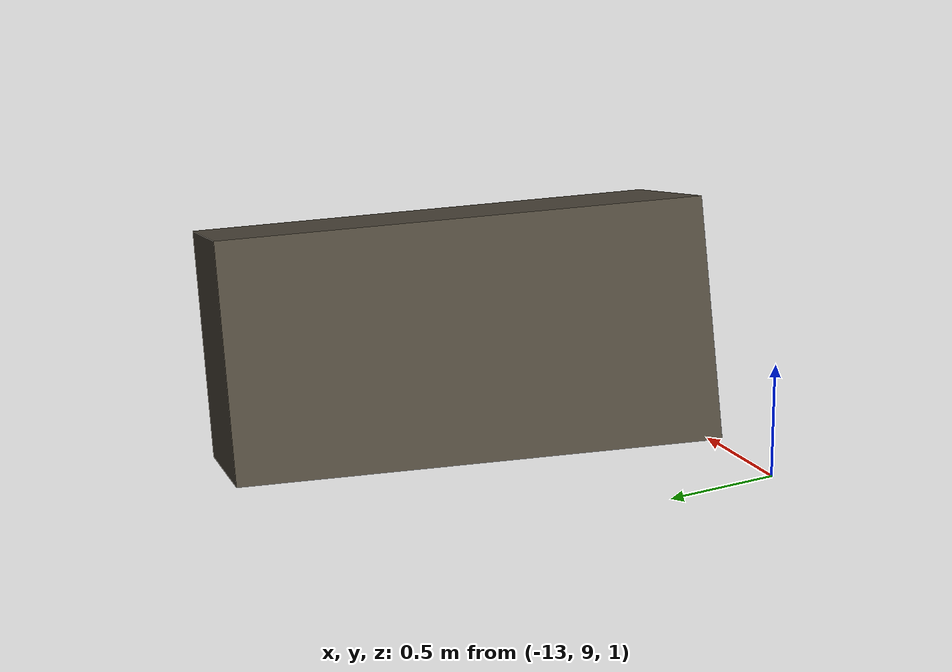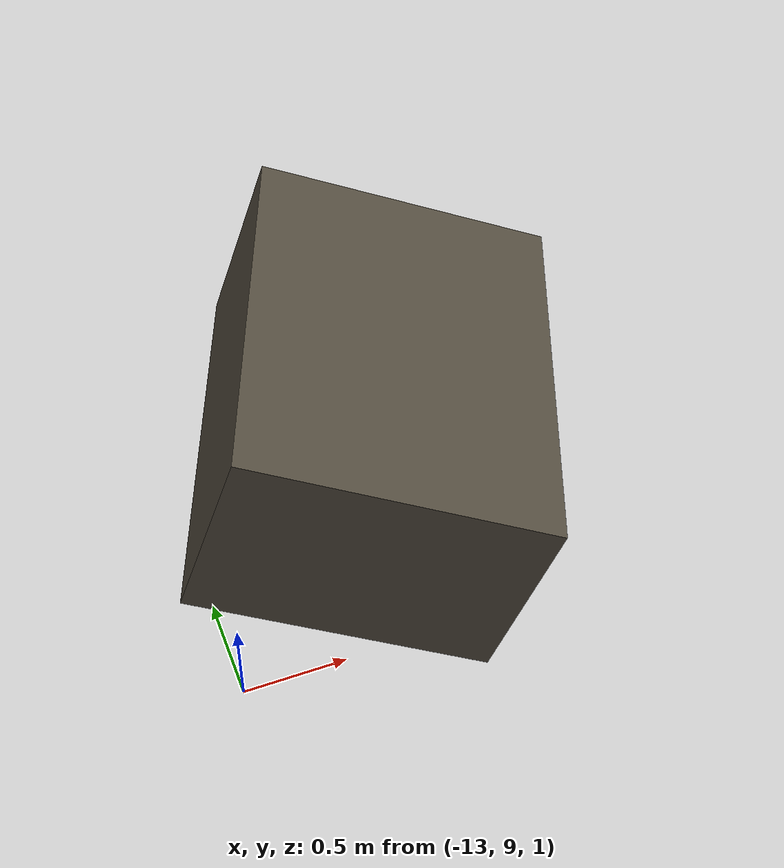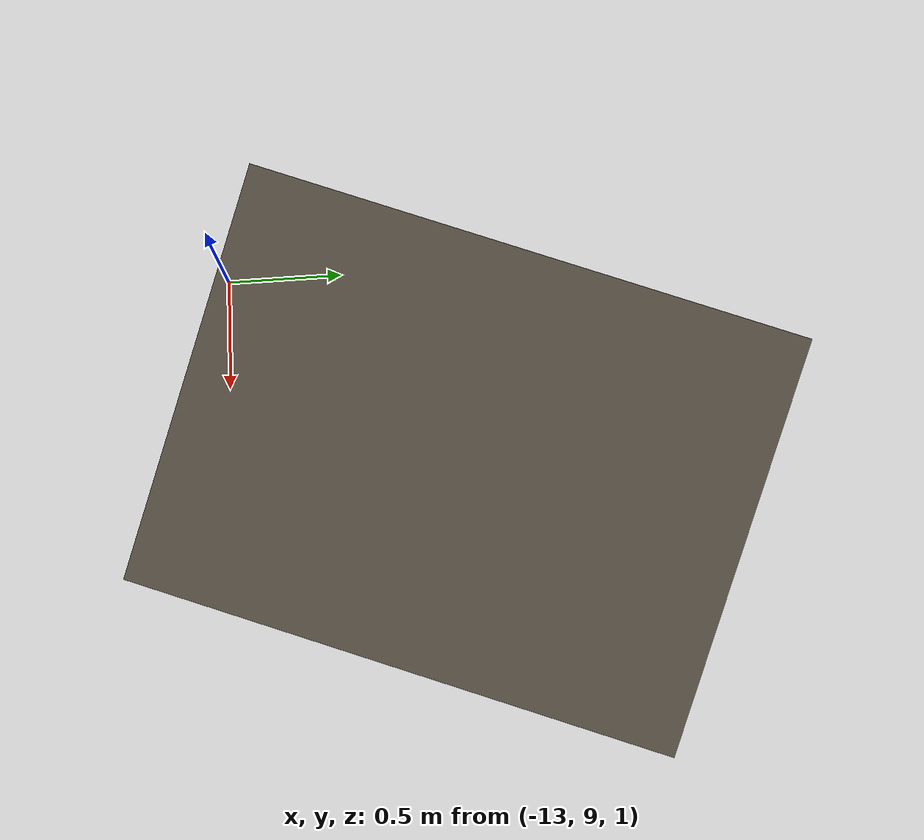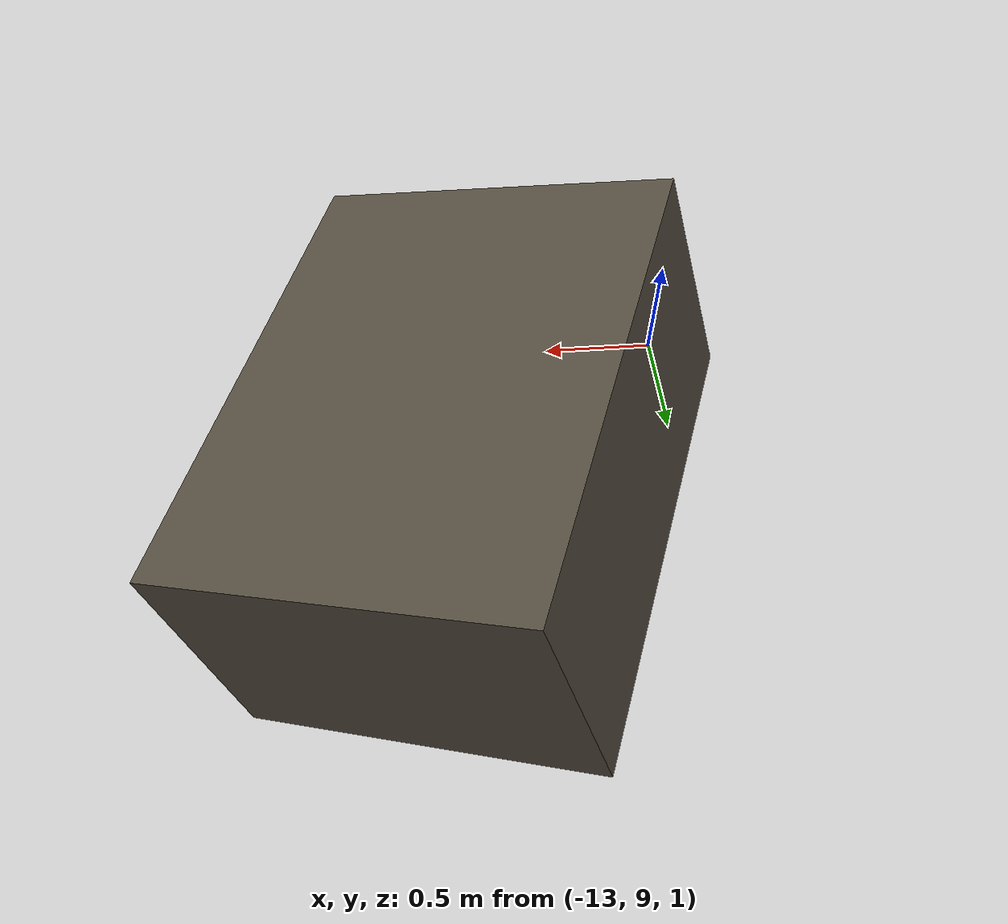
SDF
<sdf version="1.9">
 <world name="lunar_terrain">
  <model name="rock_b">
   <static>true</static>
   <pose>-12 10 1.51 0.3 0.05 1.2</pose>
   <link name="link">
    <collision name="c"><geometry><box><size>2.0 1.5 1.0</size></box></geometry></collision>
    <visual name="v">
     <geometry><box><size>2.0 1.5 1.0</size></box></geometry>
     <material>
      <ambient>0.21 0.19 0.16 1</ambient>
      <diffuse>0.33 0.30 0.25 1</diffuse>
      <specular>0.06 0.06 0.05 1</specular>
     </material>
    </visual>
   </link>
  </model>
 </world>
</sdf>
